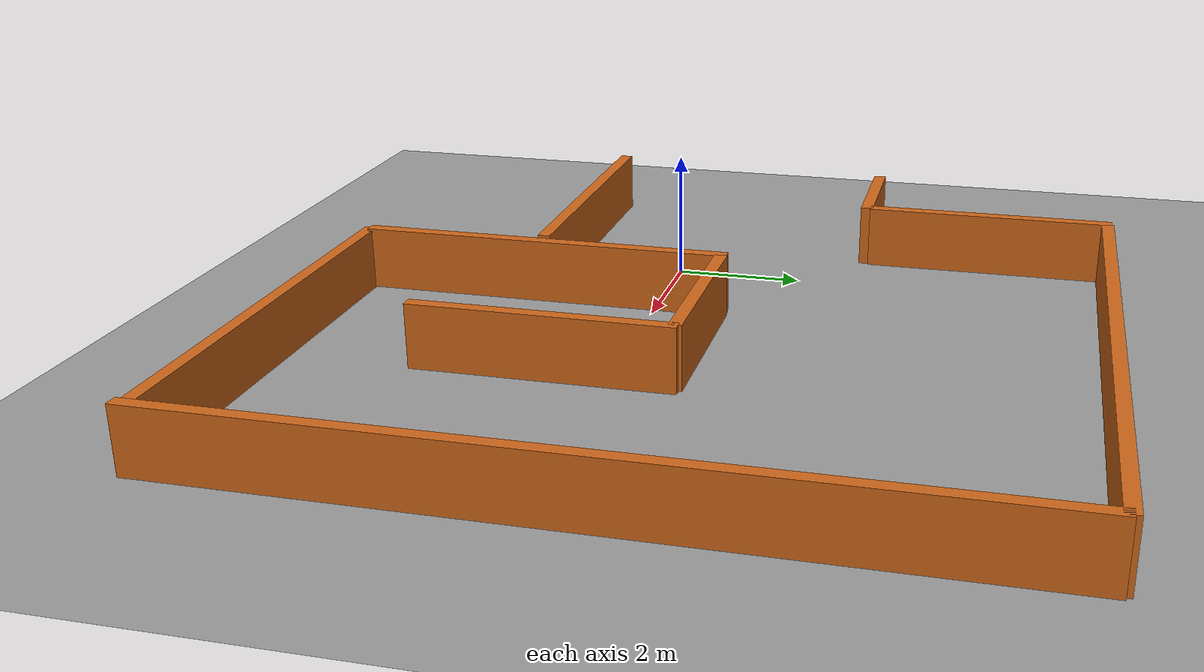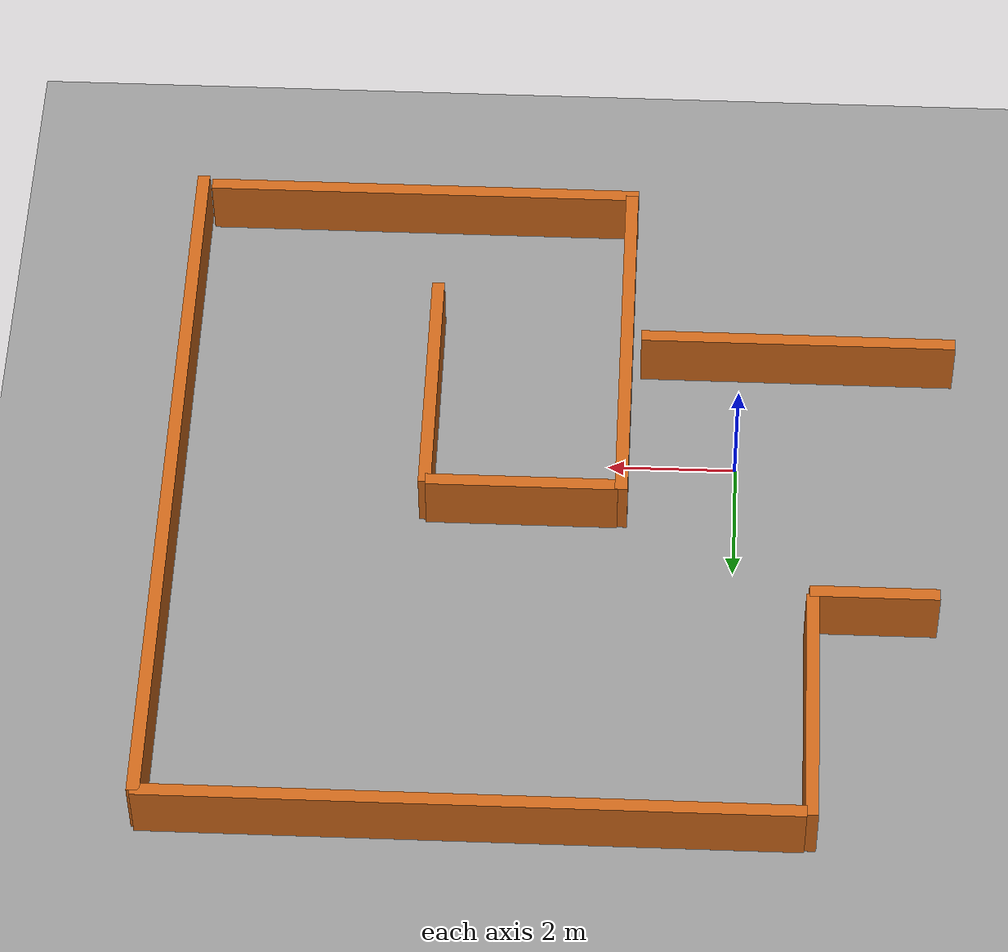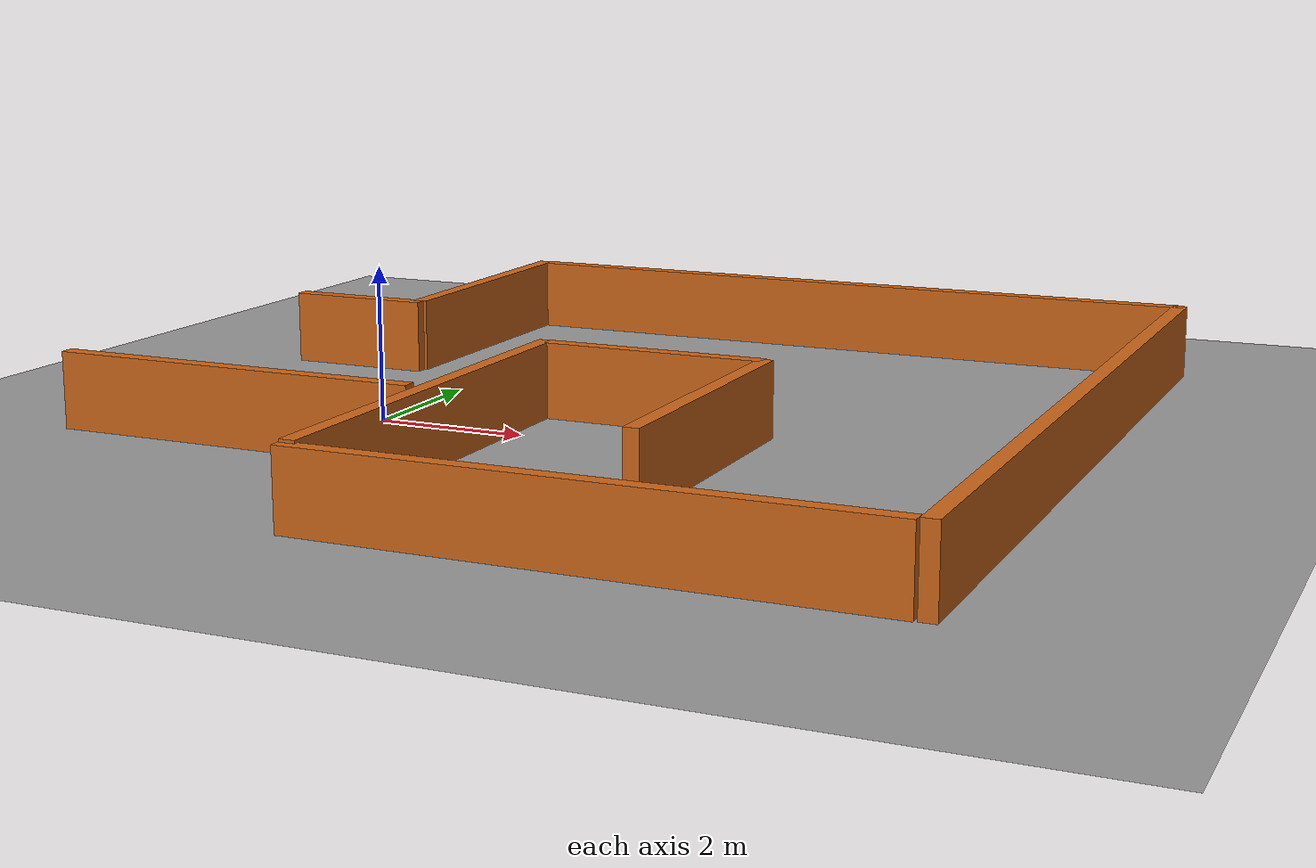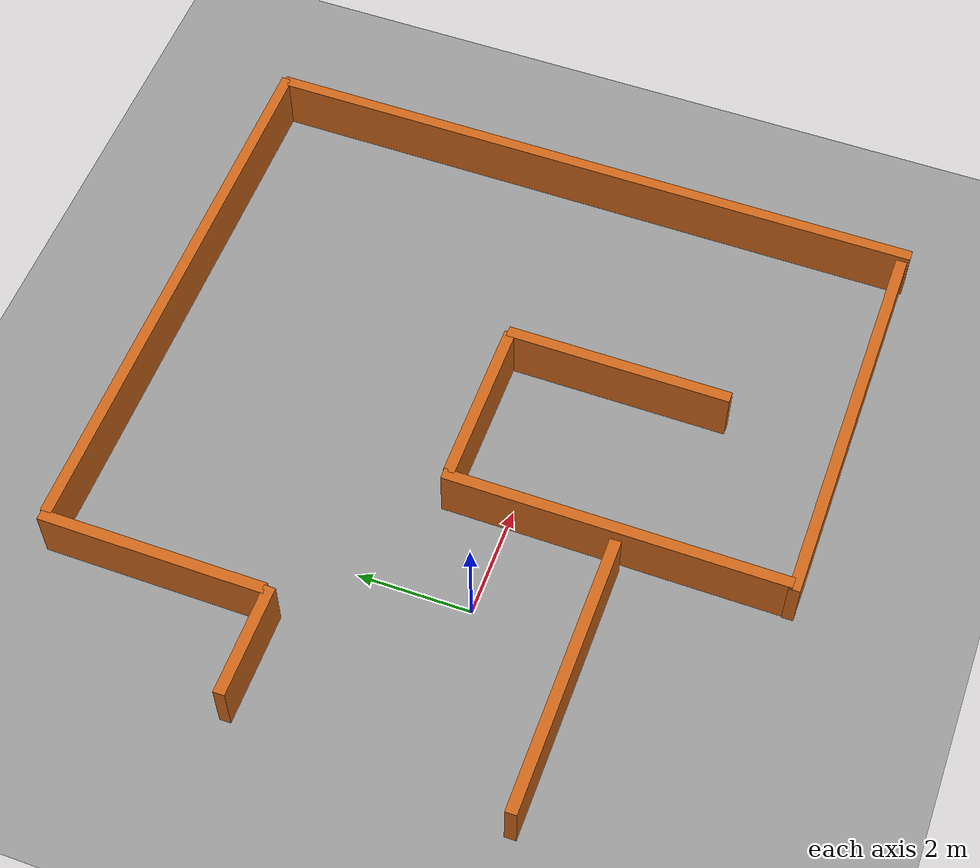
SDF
<sdf version='1.10'>
  <world name='task14_world'>
    <physics name='1ms' type='ignored'>
      <max_step_size>0.001</max_step_size>
      <real_time_factor>1</real_time_factor>
      <real_time_update_rate>1000</real_time_update_rate>
    </physics>
    <plugin name='gz::sim::systems::Physics' filename='gz-sim-physics-system'/>
    <plugin name='gz::sim::systems::UserCommands' filename='gz-sim-user-commands-system'/>
    <plugin name='gz::sim::systems::SceneBroadcaster' filename='gz-sim-scene-broadcaster-system'/>
    <plugin name='gz::sim::systems::Sensors' filename='gz-sim-sensors-system'>
      <render_engine>ogre2</render_engine>
    </plugin>
    <gravity>0 0 -9.8000000000000007</gravity>
    <magnetic_field>5.5644999999999998e-06 2.2875799999999999e-05 -4.2388400000000002e-05</magnetic_field>
    <atmosphere type='adiabatic'/>
    <scene>
      <ambient>0.400000006 0.400000006 0.400000006 1</ambient>
      <background>0.699999988 0.699999988 0.699999988 1</background>
      <shadows>true</shadows>
    </scene>
    <model name='ground_plane'>
      <static>true</static>
      <link name='link'>
        <collision name='collision'>
          <geometry>
            <plane>
              <normal>0 0 1</normal>
              <size>20 20</size>
            </plane>
          </geometry>
          <surface>
            <friction>
              <ode/>
            </friction>
            <bounce/>
            <contact/>
          </surface>
        </collision>
        <visual name='visual'>
          <geometry>
            <plane>
              <normal>0 0 1</normal>
              <size>20 20</size>
            </plane>
          </geometry>
          <material>
            <ambient>0.600000024 0.600000024 0.600000024 1</ambient>
            <diffuse>0.600000024 0.600000024 0.600000024 1</diffuse>
          </material>
        </visual>
        <pose>0 0 0 0 0 0</pose>
        <inertial>
          <pose>0 0 0 0 0 0</pose>
          <mass>1</mass>
          <inertia>
            <ixx>1</ixx>
            <ixy>0</ixy>
            <ixz>0</ixz>
            <iyy>1</iyy>
            <iyz>0</iyz>
            <izz>1</izz>
          </inertia>
        </inertial>
        <enable_wind>false</enable_wind>
      </link>
      <pose>0 0 0 0 0 0</pose>
      <self_collide>false</self_collide>
    </model>
    <model name='wall_top'>
      <static>true</static>
      <pose>3.866363525390625 6.9735298156738281 0.5 0 0 0</pose>
      <link name='link'>
        <collision name='c'>
          <geometry>
            <box>
              <size>10 0.20000000000000001 1</size>
            </box>
          </geometry>
          <surface>
            <friction>
              <ode/>
            </friction>
            <bounce/>
            <contact/>
          </surface>
        </collision>
        <visual name='v'>
          <geometry>
            <box>
              <size>10 0.20000000000000001 1</size>
            </box>
          </geometry>
          <material>
            <ambient>0.800000012 0.400000006 0.100000001 1</ambient>
            <diffuse>0.800000012 0.400000006 0.100000001 1</diffuse>
          </material>
        </visual>
        <pose>0 0 0 0 0 0</pose>
        <inertial>
          <pose>0 0 0 0 0 0</pose>
          <mass>1</mass>
          <inertia>
            <ixx>1</ixx>
            <ixy>0</ixy>
            <ixz>0</ixz>
            <iyy>1</iyy>
            <iyz>0</iyz>
            <izz>1</izz>
          </inertia>
        </inertial>
        <enable_wind>false</enable_wind>
      </link>
      <self_collide>false</self_collide>
    </model>
    <model name='wall_left'>
      <static>true</static>
      <pose>8.8160934448242188 1.0000437498092651 0.5 0 0 1.5708000357176291</pose>
      <link name='link'>
        <collision name='c'>
          <geometry>
            <box>
              <size>12 0.20000000000000001 1</size>
            </box>
          </geometry>
          <surface>
            <friction>
              <ode/>
            </friction>
            <bounce/>
            <contact/>
          </surface>
        </collision>
        <visual name='v'>
          <geometry>
            <box>
              <size>12 0.20000000000000001 1</size>
            </box>
          </geometry>
          <material>
            <ambient>0.800000012 0.400000006 0.100000001 1</ambient>
            <diffuse>0.800000012 0.400000006 0.100000001 1</diffuse>
          </material>
        </visual>
        <pose>0 0 0 0 0 0</pose>
        <inertial>
          <pose>0 0 0 0 0 0</pose>
          <mass>1</mass>
          <inertia>
            <ixx>1</ixx>
            <ixy>0</ixy>
            <ixz>0</ixz>
            <iyy>1</iyy>
            <iyz>0</iyz>
            <izz>1</izz>
          </inertia>
        </inertial>
        <enable_wind>false</enable_wind>
      </link>
      <self_collide>false</self_collide>
    </model>
    <model name='wall_left_down'>
      <static>true</static>
      <pose>-2.1534738540649414 2.9869799613952637 0.5 0 0 0</pose>
      <link name='link'>
        <collision name='c'>
          <geometry>
            <box>
              <size>2 0.20000000000000001 1</size>
            </box>
          </geometry>
          <surface>
            <friction>
              <ode/>
            </friction>
            <bounce/>
            <contact/>
          </surface>
        </collision>
        <visual name='v'>
          <geometry>
            <box>
              <size>2 0.20000000000000001 1</size>
            </box>
          </geometry>
          <material>
            <ambient>0.800000012 0.400000006 0.100000001 1</ambient>
            <diffuse>0.800000012 0.400000006 0.100000001 1</diffuse>
          </material>
        </visual>
        <pose>0 0 0 0 0 0</pose>
        <inertial>
          <pose>0 0 0 0 0 0</pose>
          <mass>1</mass>
          <inertia>
            <ixx>1</ixx>
            <ixy>0</ixy>
            <ixz>0</ixz>
            <iyy>1</iyy>
            <iyz>0</iyz>
            <izz>1</izz>
          </inertia>
        </inertial>
        <enable_wind>false</enable_wind>
      </link>
      <self_collide>false</self_collide>
    </model>
    <model name='wall_left_down1'>
      <static>true</static>
      <pose>3.3315951824188232 1.07846999168396 0.5 0 0 0</pose>
      <link name='link'>
        <collision name='c'>
          <geometry>
            <box>
              <size>3 0.20000000000000001 1</size>
            </box>
          </geometry>
          <surface>
            <friction>
              <ode/>
            </friction>
            <bounce/>
            <contact/>
          </surface>
        </collision>
        <visual name='v'>
          <geometry>
            <box>
              <size>3 0.20000000000000001 1</size>
            </box>
          </geometry>
          <material>
            <ambient>0.800000012 0.400000006 0.100000001 1</ambient>
            <diffuse>0.800000012 0.400000006 0.100000001 1</diffuse>
          </material>
        </visual>
        <pose>0 0 0 0 0 0</pose>
        <inertial>
          <pose>0 0 0 0 0 0</pose>
          <mass>1</mass>
          <inertia>
            <ixx>1</ixx>
            <ixy>0</ixy>
            <ixz>0</ixz>
            <iyy>1</iyy>
            <iyz>0</iyz>
            <izz>1</izz>
          </inertia>
        </inertial>
        <enable_wind>false</enable_wind>
      </link>
      <self_collide>false</self_collide>
    </model>
    <model name='wall_right'>
      <static>true</static>
      <pose>1.7777798175811768 -1.8364714384078979 0.5 0 0 1.5708000357176291</pose>
      <link name='link'>
        <collision name='c'>
          <geometry>
            <box>
              <size>6 0.20000000000000001 1</size>
            </box>
          </geometry>
          <surface>
            <friction>
              <ode/>
            </friction>
            <bounce/>
            <contact/>
          </surface>
        </collision>
        <visual name='v'>
          <geometry>
            <box>
              <size>6 0.20000000000000001 1</size>
            </box>
          </geometry>
          <material>
            <ambient>0.800000012 0.400000006 0.100000001 1</ambient>
            <diffuse>0.800000012 0.400000006 0.100000001 1</diffuse>
          </material>
        </visual>
        <pose>0 0 0 0 0 0</pose>
        <inertial>
          <pose>0 0 0 0 0 0</pose>
          <mass>1</mass>
          <inertia>
            <ixx>1</ixx>
            <ixy>0</ixy>
            <ixz>0</ixz>
            <iyy>1</iyy>
            <iyz>0</iyz>
            <izz>1</izz>
          </inertia>
        </inertial>
        <enable_wind>false</enable_wind>
      </link>
      <self_collide>false</self_collide>
    </model>
    <model name='wall_right_dec'>
      <static>true</static>
      <pose>4.8422083854675293 -0.87270861864089966 0.5 0 0 1.5708000357176291</pose>
      <link name='link'>
        <collision name='c'>
          <geometry>
            <box>
              <size>4 0.20000000000000001 1</size>
            </box>
          </geometry>
          <surface>
            <friction>
              <ode/>
            </friction>
            <bounce/>
            <contact/>
          </surface>
        </collision>
        <visual name='v'>
          <geometry>
            <box>
              <size>4 0.20000000000000001 1</size>
            </box>
          </geometry>
          <material>
            <ambient>0.800000012 0.400000006 0.100000001 1</ambient>
            <diffuse>0.800000012 0.400000006 0.100000001 1</diffuse>
          </material>
        </visual>
        <pose>0 0 0 0 0 0</pose>
        <inertial>
          <pose>0 0 0 0 0 0</pose>
          <mass>1</mass>
          <inertia>
            <ixx>1</ixx>
            <ixy>0</ixy>
            <ixz>0</ixz>
            <iyy>1</iyy>
            <iyz>0</iyz>
            <izz>1</izz>
          </inertia>
        </inertial>
        <enable_wind>false</enable_wind>
      </link>
      <self_collide>false</self_collide>
    </model>
    <model name='wall_right_dec1'>
      <static>true</static>
      <pose>-1.2100706100463867 5.0449118614196777 0.5 0 0 1.5708000357176291</pose>
      <link name='link'>
        <collision name='c'>
          <geometry>
            <box>
              <size>4 0.20000000000000001 1</size>
            </box>
          </geometry>
          <surface>
            <friction>
              <ode/>
            </friction>
            <bounce/>
            <contact/>
          </surface>
        </collision>
        <visual name='v'>
          <geometry>
            <box>
              <size>4 0.20000000000000001 1</size>
            </box>
          </geometry>
          <material>
            <ambient>0.800000012 0.400000006 0.100000001 1</ambient>
            <diffuse>0.800000012 0.400000006 0.100000001 1</diffuse>
          </material>
        </visual>
        <pose>0 0 0 0 0 0</pose>
        <inertial>
          <pose>0 0 0 0 0 0</pose>
          <mass>1</mass>
          <inertia>
            <ixx>1</ixx>
            <ixy>0</ixy>
            <ixz>0</ixz>
            <iyy>1</iyy>
            <iyz>0</iyz>
            <izz>1</izz>
          </inertia>
        </inertial>
        <enable_wind>false</enable_wind>
      </link>
      <self_collide>false</self_collide>
    </model>
    <model name='wall_top1'>
      <static>true</static>
      <pose>-0.95316159725189209 -1.9180899858474731 0.5 0 0 0</pose>
      <link name='link'>
        <collision name='c'>
          <geometry>
            <box>
              <size>5 0.20000000000000001 1</size>
            </box>
          </geometry>
          <surface>
            <friction>
              <ode/>
            </friction>
            <bounce/>
            <contact/>
          </surface>
        </collision>
        <visual name='v'>
          <geometry>
            <box>
              <size>5 0.20000000000000001 1</size>
            </box>
          </geometry>
          <material>
            <ambient>0.800000012 0.400000006 0.100000001 1</ambient>
            <diffuse>0.800000012 0.400000006 0.100000001 1</diffuse>
          </material>
        </visual>
        <pose>0 0 0 0 0 0</pose>
        <inertial>
          <pose>0 0 0 0 0 0</pose>
          <mass>1</mass>
          <inertia>
            <ixx>1</ixx>
            <ixy>0</ixy>
            <ixz>0</ixz>
            <iyy>1</iyy>
            <iyz>0</iyz>
            <izz>1</izz>
          </inertia>
        </inertial>
        <enable_wind>false</enable_wind>
      </link>
      <self_collide>false</self_collide>
    </model>
    <model name='wall_top2'>
      <static>true</static>
      <pose>5.1702923774719238 -4.8703098297119141 0.46358600258827209 0 0 0</pose>
      <link name='link'>
        <collision name='c'>
          <geometry>
            <box>
              <size>7 0.20000000000000001 1</size>
            </box>
          </geometry>
          <surface>
            <friction>
              <ode/>
            </friction>
            <bounce/>
            <contact/>
          </surface>
        </collision>
        <visual name='v'>
          <geometry>
            <box>
              <size>7 0.20000000000000001 1</size>
            </box>
          </geometry>
          <material>
            <ambient>0.800000012 0.400000006 0.100000001 1</ambient>
            <diffuse>0.800000012 0.400000006 0.100000001 1</diffuse>
          </material>
        </visual>
        <pose>0 0 0 0 0 0</pose>
        <inertial>
          <pose>0 0 0 0 0 0</pose>
          <mass>1</mass>
          <inertia>
            <ixx>1</ixx>
            <ixy>0</ixy>
            <ixz>0</ixz>
            <iyy>1</iyy>
            <iyz>0</iyz>
            <izz>1</izz>
          </inertia>
        </inertial>
        <enable_wind>false</enable_wind>
      </link>
      <self_collide>false</self_collide>
    </model>
    <light name='sun' type='directional'>
      <pose>0 0 10 0 0 0</pose>
      <cast_shadows>true</cast_shadows>
      <intensity>1</intensity>
      <direction>-0.5 0.10000000000000001 -0.90000000000000002</direction>
      <diffuse>0.800000012 0.800000012 0.800000012 1</diffuse>
      <specular>0.200000003 0.200000003 0.200000003 1</specular>
      <attenuation>
        <range>10</range>
        <linear>1</linear>
        <constant>1</constant>
        <quadratic>0</quadratic>
      </attenuation>
      <spot>
        <inner_angle>0</inner_angle>
        <outer_angle>0</outer_angle>
        <falloff>0</falloff>
      </spot>
    </light>
  </world>
</sdf>
